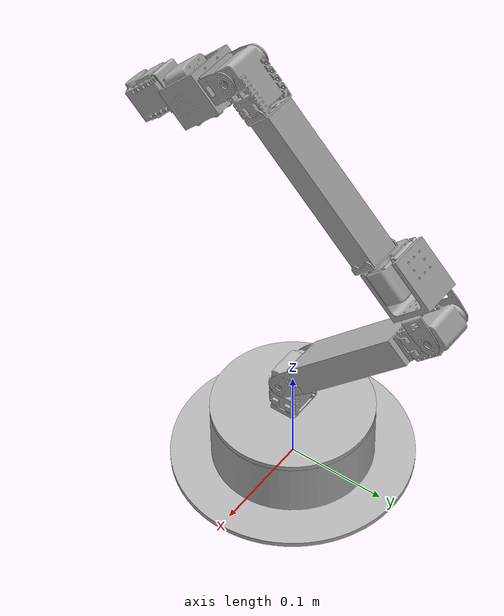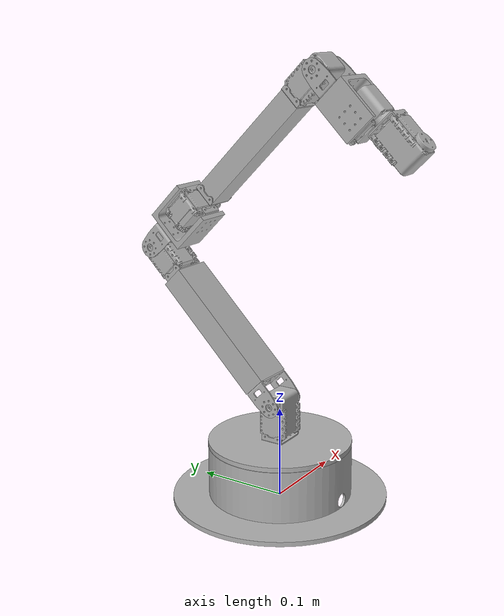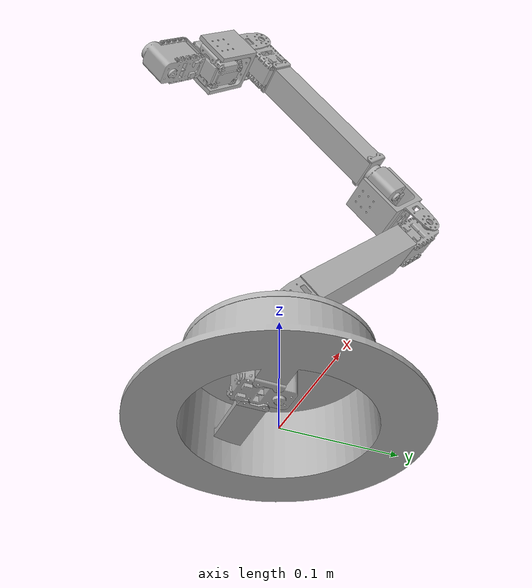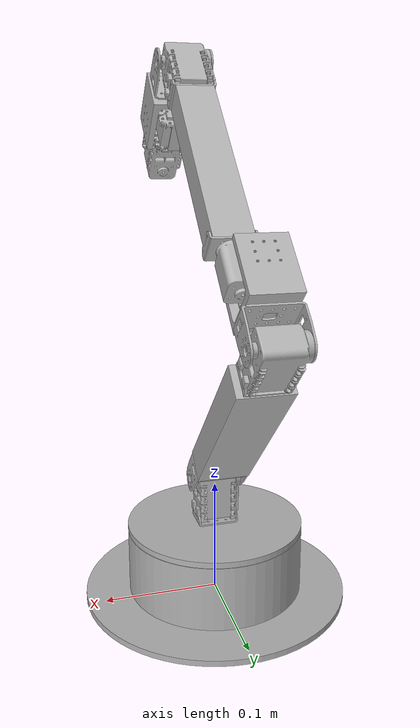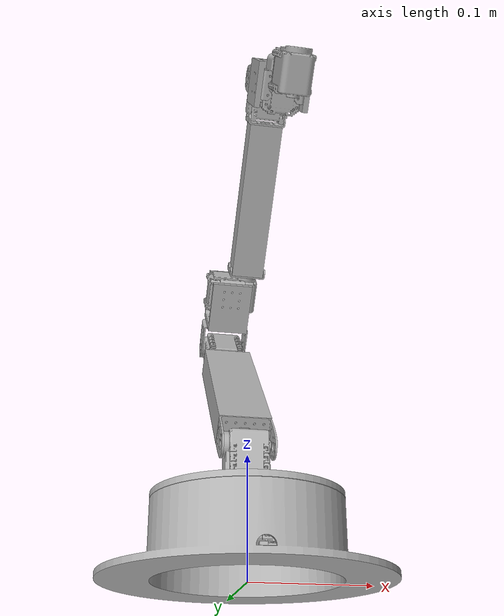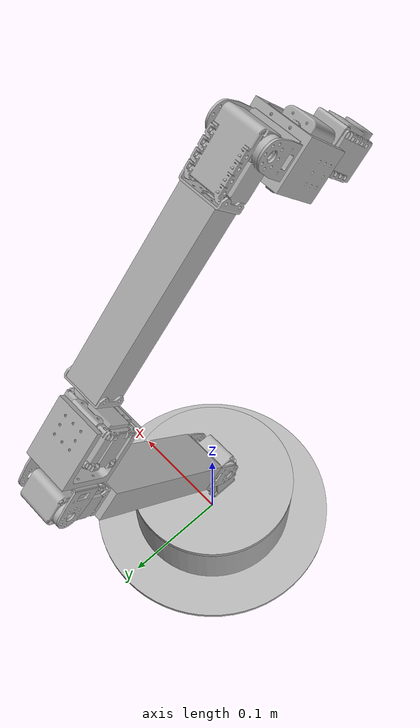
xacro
<?xml version="1.0" ?>
<robot name="mvp_arm_6dof" xmlns:xacro="http://www.ros.org/wiki/xacro">

<xacro:include filename="$(find mvp_arm_6dof_description)/urdf/materials.xacro" />
<xacro:include filename="$(find mvp_arm_6dof_description)/urdf/mvp_arm_6dof.trans" />
<xacro:include filename="$(find mvp_arm_6dof_description)/urdf/mvp_arm_6dof.gazebo" />

<link name="world"/>

<link name="base_link">
  <inertial>
		<origin xyz="0 0 0" rpy="0 0 0" />
		<mass value="3.06" />
		<inertia ixx="0.3" ixy="0.0" ixz="0.0" iyy="0.3" iyz="0.0" izz="0.3" />
  </inertial>
  <visual>
    <origin rpy="0 0 0" xyz="0 0 0"/>
    <geometry>
      <mesh filename="package://mvp_arm_6dof_description/meshes/base_link.stl" scale="0.001 0.001 0.001"/>
    </geometry>
    <material name="silver"/>
  </visual>
  <collision>
    <origin rpy="0 0 0" xyz="0 0 0"/>
    <geometry>
      <mesh filename="package://mvp_arm_6dof_description/meshes/base_link.stl" scale="0.001 0.001 0.001"/>
    </geometry>
  </collision>
</link>

<link name="f3Bracket_1">
  <inertial>
		<origin xyz="0 0 0" rpy="0 0 0" />
		<mass value="3.06" />
		<inertia ixx="0.3" ixy="0.0" ixz="0.0" iyy="0.3" iyz="0.0" izz="0.3" />
  </inertial>
  <visual>
    <origin rpy="0 0 0" xyz="0.019 0.01475 -0.041"/>
    <geometry>
      <mesh filename="package://mvp_arm_6dof_description/meshes/f3Bracket_1.stl" scale="0.001 0.001 0.001"/>
    </geometry>
    <material name="silver"/>
  </visual>
  <collision>
    <origin rpy="0 0 0" xyz="0.019 0.01475 -0.041"/>
    <geometry>
      <mesh filename="package://mvp_arm_6dof_description/meshes/f3Bracket_1.stl" scale="0.001 0.001 0.001"/>
    </geometry>
  </collision>
</link>

<link name="f3Bracket__1__1">
  <inertial>
		<origin xyz="0 0 0" rpy="0 0 0" />
		<mass value="3.06" />
		<inertia ixx="0.3" ixy="0.0" ixz="0.0" iyy="0.3" iyz="0.0" izz="0.3" />
  </inertial>
  <visual>
    <origin rpy="0 0 0" xyz="-0.019 0.01475 -0.041"/>
    <geometry>
      <mesh filename="package://mvp_arm_6dof_description/meshes/f3Bracket__1__1.stl" scale="0.001 0.001 0.001"/>
    </geometry>
    <material name="silver"/>
  </visual>
  <collision>
    <origin rpy="0 0 0" xyz="-0.019 0.01475 -0.041"/>
    <geometry>
      <mesh filename="package://mvp_arm_6dof_description/meshes/f3Bracket__1__1.stl" scale="0.001 0.001 0.001"/>
    </geometry>
  </collision>
</link>

<link name="AX12A_servo_1">
  <inertial>
		<origin xyz="0 0 0" rpy="0 0 0" />
		<mass value="3.06" />
		<inertia ixx="0.3" ixy="0.0" ixz="0.0" iyy="0.3" iyz="0.0" izz="0.3" />
  </inertial>
  <visual>
    <origin rpy="0 0 0" xyz="0.0135 0.00675 -0.057"/>
    <geometry>
      <mesh filename="package://mvp_arm_6dof_description/meshes/AX12A_servo_1.stl" scale="0.001 0.001 0.001"/>
    </geometry>
    <material name="silver"/>
  </visual>
  <collision>
    <origin rpy="0 0 0" xyz="0.0135 0.00675 -0.057"/>
    <geometry>
      <mesh filename="package://mvp_arm_6dof_description/meshes/AX12A_servo_1.stl" scale="0.001 0.001 0.001"/>
    </geometry>
  </collision>
</link>

<link name="lid_1">
  <inertial>
		<origin xyz="0 0 0" rpy="0 0 0" />
		<mass value="3.06" />
		<inertia ixx="0.3" ixy="0.0" ixz="0.0" iyy="0.3" iyz="0.0" izz="0.3" />
  </inertial>
  <visual>
    <origin rpy="0 0 0" xyz="0.0 -0.0 -0.06175"/>
    <geometry>
      <mesh filename="package://mvp_arm_6dof_description/meshes/lid_1.stl" scale="0.001 0.001 0.001"/>
    </geometry>
    <material name="silver"/>
  </visual>
  <collision>
    <origin rpy="0 0 0" xyz="0.0 -0.0 -0.06175"/>
    <geometry>
      <mesh filename="package://mvp_arm_6dof_description/meshes/lid_1.stl" scale="0.001 0.001 0.001"/>
    </geometry>
  </collision>
</link>

<link name="f3Bracket__2__1">
  <inertial>
		<origin xyz="0 0 0" rpy="0 0 0" />
		<mass value="3.06" />
		<inertia ixx="0.3" ixy="0.0" ixz="0.0" iyy="0.3" iyz="0.0" izz="0.3" />
  </inertial>
  <visual>
    <origin rpy="0 0 0" xyz="0.0 -0.0 -0.06675"/>
    <geometry>
      <mesh filename="package://mvp_arm_6dof_description/meshes/f3Bracket__2__1.stl" scale="0.001 0.001 0.001"/>
    </geometry>
    <material name="silver"/>
  </visual>
  <collision>
    <origin rpy="0 0 0" xyz="0.0 -0.0 -0.06675"/>
    <geometry>
      <mesh filename="package://mvp_arm_6dof_description/meshes/f3Bracket__2__1.stl" scale="0.001 0.001 0.001"/>
    </geometry>
  </collision>
</link>

<link name="AX12A_servo__1__1">
  <inertial>
		<origin xyz="0 0 0" rpy="0 0 0" />
		<mass value="3.06" />
		<inertia ixx="0.3" ixy="0.0" ixz="0.0" iyy="0.3" iyz="0.0" izz="0.3" />
  </inertial>
  <visual>
    <origin rpy="0 0 0" xyz="0.016 0.008 -0.07225"/>
    <geometry>
      <mesh filename="package://mvp_arm_6dof_description/meshes/AX12A_servo__1__1.stl" scale="0.001 0.001 0.001"/>
    </geometry>
    <material name="silver"/>
  </visual>
  <collision>
    <origin rpy="0 0 0" xyz="0.016 0.008 -0.07225"/>
    <geometry>
      <mesh filename="package://mvp_arm_6dof_description/meshes/AX12A_servo__1__1.stl" scale="0.001 0.001 0.001"/>
    </geometry>
  </collision>
</link>

<link name="f2Bracket_1">
  <inertial>
		<origin xyz="0 0 0" rpy="0 0 0" />
		<mass value="3.06" />
		<inertia ixx="0.3" ixy="0.0" ixz="0.0" iyy="0.3" iyz="0.0" izz="0.3" />
  </inertial>
  <visual>
    <origin rpy="0 0 0" xyz="0.02075 -0.0 -0.10825"/>
    <geometry>
      <mesh filename="package://mvp_arm_6dof_description/meshes/f2Bracket_1.stl" scale="0.001 0.001 0.001"/>
    </geometry>
    <material name="silver"/>
  </visual>
  <collision>
    <origin rpy="0 0 0" xyz="0.02075 -0.0 -0.10825"/>
    <geometry>
      <mesh filename="package://mvp_arm_6dof_description/meshes/f2Bracket_1.stl" scale="0.001 0.001 0.001"/>
    </geometry>
  </collision>
</link>

<link name="shoulderArm__1">
  <inertial>
		<origin xyz="0 0 0" rpy="0 0 0" />
		<mass value="3.06" />
		<inertia ixx="0.3" ixy="0.0" ixz="0.0" iyy="0.3" iyz="0.0" izz="0.3" />
  </inertial>
  <visual>
    <origin rpy="0 0 0" xyz="-0.00025 -0.018709 -0.126952"/>
    <geometry>
      <mesh filename="package://mvp_arm_6dof_description/meshes/shoulderArm__1.stl" scale="0.001 0.001 0.001"/>
    </geometry>
    <material name="silver"/>
  </visual>
  <collision>
    <origin rpy="0 0 0" xyz="-0.00025 -0.018709 -0.126952"/>
    <geometry>
      <mesh filename="package://mvp_arm_6dof_description/meshes/shoulderArm__1.stl" scale="0.001 0.001 0.001"/>
    </geometry>
  </collision>
</link>

<link name="f3Bracket__3__1">
  <inertial>
		<origin xyz="0 0 0" rpy="0 0 0" />
		<mass value="3.06" />
		<inertia ixx="0.3" ixy="0.0" ixz="0.0" iyy="0.3" iyz="0.0" izz="0.3" />
  </inertial>
  <visual>
    <origin rpy="0 0 0" xyz="-0.00025 -0.124775 -0.233018"/>
    <geometry>
      <mesh filename="package://mvp_arm_6dof_description/meshes/f3Bracket__3__1.stl" scale="0.001 0.001 0.001"/>
    </geometry>
    <material name="silver"/>
  </visual>
  <collision>
    <origin rpy="0 0 0" xyz="-0.00025 -0.124775 -0.233018"/>
    <geometry>
      <mesh filename="package://mvp_arm_6dof_description/meshes/f3Bracket__3__1.stl" scale="0.001 0.001 0.001"/>
    </geometry>
  </collision>
</link>

<link name="AX12A_servo__2__1">
  <inertial>
		<origin xyz="0 0 0" rpy="0 0 0" />
		<mass value="3.06" />
		<inertia ixx="0.3" ixy="0.0" ixz="0.0" iyy="0.3" iyz="0.0" izz="0.3" />
  </inertial>
  <visual>
    <origin rpy="0 0 0" xyz="0.015749 -0.134321 -0.23125"/>
    <geometry>
      <mesh filename="package://mvp_arm_6dof_description/meshes/AX12A_servo__2__1.stl" scale="0.001 0.001 0.001"/>
    </geometry>
    <material name="silver"/>
  </visual>
  <collision>
    <origin rpy="0 0 0" xyz="0.015749 -0.134321 -0.23125"/>
    <geometry>
      <mesh filename="package://mvp_arm_6dof_description/meshes/AX12A_servo__2__1.stl" scale="0.001 0.001 0.001"/>
    </geometry>
  </collision>
</link>

<link name="f2Bracket__1__1">
  <inertial>
		<origin xyz="0 0 0" rpy="0 0 0" />
		<mass value="3.06" />
		<inertia ixx="0.3" ixy="0.0" ixz="0.0" iyy="0.3" iyz="0.0" izz="0.3" />
  </inertial>
  <visual>
    <origin rpy="0 0 0" xyz="0.020499 -0.15412 -0.262363"/>
    <geometry>
      <mesh filename="package://mvp_arm_6dof_description/meshes/f2Bracket__1__1.stl" scale="0.001 0.001 0.001"/>
    </geometry>
    <material name="silver"/>
  </visual>
  <collision>
    <origin rpy="0 0 0" xyz="0.020499 -0.15412 -0.262363"/>
    <geometry>
      <mesh filename="package://mvp_arm_6dof_description/meshes/f2Bracket__1__1.stl" scale="0.001 0.001 0.001"/>
    </geometry>
  </collision>
</link>

<link name="axis3-4_connector__1">
  <inertial>
		<origin xyz="0 0 0" rpy="0 0 0" />
		<mass value="3.06" />
		<inertia ixx="0.3" ixy="0.0" ixz="0.0" iyy="0.3" iyz="0.0" izz="0.3" />
  </inertial>
  <visual>
    <origin rpy="0 0 0" xyz="-0.0005 -0.135417 -0.281072"/>
    <geometry>
      <mesh filename="package://mvp_arm_6dof_description/meshes/axis3-4_connector__1.stl" scale="0.001 0.001 0.001"/>
    </geometry>
    <material name="silver"/>
  </visual>
  <collision>
    <origin rpy="0 0 0" xyz="-0.0005 -0.135417 -0.281072"/>
    <geometry>
      <mesh filename="package://mvp_arm_6dof_description/meshes/axis3-4_connector__1.stl" scale="0.001 0.001 0.001"/>
    </geometry>
  </collision>
</link>

<link name="f3Bracket__4__1">
  <inertial>
		<origin xyz="0 0 0" rpy="0 0 0" />
		<mass value="3.06" />
		<inertia ixx="0.3" ixy="0.0" ixz="0.0" iyy="0.3" iyz="0.0" izz="0.3" />
  </inertial>
  <visual>
    <origin rpy="0 0 0" xyz="-0.0005 -0.09193 -0.297689"/>
    <geometry>
      <mesh filename="package://mvp_arm_6dof_description/meshes/f3Bracket__4__1.stl" scale="0.001 0.001 0.001"/>
    </geometry>
    <material name="silver"/>
  </visual>
  <collision>
    <origin rpy="0 0 0" xyz="-0.0005 -0.09193 -0.297689"/>
    <geometry>
      <mesh filename="package://mvp_arm_6dof_description/meshes/f3Bracket__4__1.stl" scale="0.001 0.001 0.001"/>
    </geometry>
  </collision>
</link>

<link name="f3Bracket__5__1">
  <inertial>
		<origin xyz="0 0 0" rpy="0 0 0" />
		<mass value="3.06" />
		<inertia ixx="0.3" ixy="0.0" ixz="0.0" iyy="0.3" iyz="0.0" izz="0.3" />
  </inertial>
  <visual>
    <origin rpy="0 0 0" xyz="-0.0005 -0.1188 -0.324559"/>
    <geometry>
      <mesh filename="package://mvp_arm_6dof_description/meshes/f3Bracket__5__1.stl" scale="0.001 0.001 0.001"/>
    </geometry>
    <material name="silver"/>
  </visual>
  <collision>
    <origin rpy="0 0 0" xyz="-0.0005 -0.1188 -0.324559"/>
    <geometry>
      <mesh filename="package://mvp_arm_6dof_description/meshes/f3Bracket__5__1.stl" scale="0.001 0.001 0.001"/>
    </geometry>
  </collision>
</link>

<link name="AX12A_servo__3__1">
  <inertial>
		<origin xyz="0 0 0" rpy="0 0 0" />
		<mass value="3.06" />
		<inertia ixx="0.3" ixy="0.0" ixz="0.0" iyy="0.3" iyz="0.0" izz="0.3" />
  </inertial>
  <visual>
    <origin rpy="0 0 0" xyz="-0.0085 -0.109255 -0.326326"/>
    <geometry>
      <mesh filename="package://mvp_arm_6dof_description/meshes/AX12A_servo__3__1.stl" scale="0.001 0.001 0.001"/>
    </geometry>
    <material name="silver"/>
  </visual>
  <collision>
    <origin rpy="0 0 0" xyz="-0.0085 -0.109255 -0.326326"/>
    <geometry>
      <mesh filename="package://mvp_arm_6dof_description/meshes/AX12A_servo__3__1.stl" scale="0.001 0.001 0.001"/>
    </geometry>
  </collision>
</link>

<link name="f3Bracket__6__1">
  <inertial>
		<origin xyz="0 0 0" rpy="0 0 0" />
		<mass value="3.06" />
		<inertia ixx="0.3" ixy="0.0" ixz="0.0" iyy="0.3" iyz="0.0" izz="0.3" />
  </inertial>
  <visual>
    <origin rpy="0 0 0" xyz="-0.01525 -0.09635 -0.320139"/>
    <geometry>
      <mesh filename="package://mvp_arm_6dof_description/meshes/f3Bracket__6__1.stl" scale="0.001 0.001 0.001"/>
    </geometry>
    <material name="silver"/>
  </visual>
  <collision>
    <origin rpy="0 0 0" xyz="-0.01525 -0.09635 -0.320139"/>
    <geometry>
      <mesh filename="package://mvp_arm_6dof_description/meshes/f3Bracket__6__1.stl" scale="0.001 0.001 0.001"/>
    </geometry>
  </collision>
</link>

<link name="axis4ARM__1">
  <inertial>
		<origin xyz="0 0 0" rpy="0 0 0" />
		<mass value="3.06" />
		<inertia ixx="0.3" ixy="0.0" ixz="0.0" iyy="0.3" iyz="0.0" izz="0.3" />
  </inertial>
  <visual>
    <origin rpy="0 0 0" xyz="-0.01525 -0.095227 -0.321262"/>
    <geometry>
      <mesh filename="package://mvp_arm_6dof_description/meshes/axis4ARM__1.stl" scale="0.001 0.001 0.001"/>
    </geometry>
    <material name="silver"/>
  </visual>
  <collision>
    <origin rpy="0 0 0" xyz="-0.01525 -0.095227 -0.321262"/>
    <geometry>
      <mesh filename="package://mvp_arm_6dof_description/meshes/axis4ARM__1.stl" scale="0.001 0.001 0.001"/>
    </geometry>
  </collision>
</link>

<link name="f3Bracket__7__1">
  <inertial>
		<origin xyz="0 0 0" rpy="0 0 0" />
		<mass value="3.06" />
		<inertia ixx="0.3" ixy="0.0" ixz="0.0" iyy="0.3" iyz="0.0" izz="0.3" />
  </inertial>
  <visual>
    <origin rpy="0 0 0" xyz="-0.01525 0.010839 -0.427328"/>
    <geometry>
      <mesh filename="package://mvp_arm_6dof_description/meshes/f3Bracket__7__1.stl" scale="0.001 0.001 0.001"/>
    </geometry>
    <material name="silver"/>
  </visual>
  <collision>
    <origin rpy="0 0 0" xyz="-0.01525 0.010839 -0.427328"/>
    <geometry>
      <mesh filename="package://mvp_arm_6dof_description/meshes/f3Bracket__7__1.stl" scale="0.001 0.001 0.001"/>
    </geometry>
  </collision>
</link>

<link name="AX12A_servo__4__1">
  <inertial>
		<origin xyz="0 0 0" rpy="0 0 0" />
		<mass value="3.06" />
		<inertia ixx="0.3" ixy="0.0" ixz="0.0" iyy="0.3" iyz="0.0" izz="0.3" />

  </inertial>
  <visual>
    <origin rpy="0 0 0" xyz="0.000749 0.020385 -0.42556"/>
    <geometry>
      <mesh filename="package://mvp_arm_6dof_description/meshes/AX12A_servo__4__1.stl" scale="0.001 0.001 0.001"/>
    </geometry>
    <material name="silver"/>
  </visual>
  <collision>
    <origin rpy="0 0 0" xyz="0.000749 0.020385 -0.42556"/>
    <geometry>
      <mesh filename="package://mvp_arm_6dof_description/meshes/AX12A_servo__4__1.stl" scale="0.001 0.001 0.001"/>
    </geometry>
  </collision>
</link>

<link name="f2Bracket__2__1">
  <inertial>
		<origin xyz="0 0 0" rpy="0 0 0" />
		<mass value="3.06" />
		<inertia ixx="0.3" ixy="0.0" ixz="0.0" iyy="0.3" iyz="0.0" izz="0.3" />
  </inertial>
  <visual>
    <origin rpy="0 0 0" xyz="0.005499 0.040184 -0.456673"/>
    <geometry>
      <mesh filename="package://mvp_arm_6dof_description/meshes/f2Bracket__2__1.stl" scale="0.001 0.001 0.001"/>
    </geometry>
    <material name="silver"/>
  </visual>
  <collision>
    <origin rpy="0 0 0" xyz="0.005499 0.040184 -0.456673"/>
    <geometry>
      <mesh filename="package://mvp_arm_6dof_description/meshes/f2Bracket__2__1.stl" scale="0.001 0.001 0.001"/>
    </geometry>
  </collision>
</link>

<link name="axis5-6_connector__1">
  <inertial>
		<origin xyz="0 0 0" rpy="0 0 0" />
		<mass value="3.06" />
		<inertia ixx="0.3" ixy="0.0" ixz="0.0" iyy="0.3" iyz="0.0" izz="0.3" />
  </inertial>
  <visual>
    <origin rpy="0 0 0" xyz="-0.0155 0.058893 -0.43797"/>
    <geometry>
      <mesh filename="package://mvp_arm_6dof_description/meshes/axis5-6_connector__1.stl" scale="0.001 0.001 0.001"/>
    </geometry>
    <material name="silver"/>
  </visual>
  <collision>
    <origin rpy="0 0 0" xyz="-0.0155 0.058893 -0.43797"/>
    <geometry>
      <mesh filename="package://mvp_arm_6dof_description/meshes/axis5-6_connector__1.stl" scale="0.001 0.001 0.001"/>
    </geometry>
  </collision>
</link>

<link name="f3Bracket__9__1">
  <inertial>
		<origin xyz="0 0 0" rpy="0 0 0" />
		<mass value="3.06" />
		<inertia ixx="0.3" ixy="0.0" ixz="0.0" iyy="0.3" iyz="0.0" izz="0.3" />
  </inertial>
  <visual>
    <origin rpy="0 0 0" xyz="0.0035 0.088945 -0.407918"/>
    <geometry>
      <mesh filename="package://mvp_arm_6dof_description/meshes/f3Bracket__9__1.stl" scale="0.001 0.001 0.001"/>
    </geometry>
    <material name="silver"/>
  </visual>
  <collision>
    <origin rpy="0 0 0" xyz="0.0035 0.088945 -0.407918"/>
    <geometry>
      <mesh filename="package://mvp_arm_6dof_description/meshes/f3Bracket__9__1.stl" scale="0.001 0.001 0.001"/>
    </geometry>
  </collision>
</link>

<link name="f3Bracket__8__1">
  <inertial>
		<origin xyz="0 0 0" rpy="0 0 0" />
		<mass value="3.06" />
		<inertia ixx="0.3" ixy="0.0" ixz="0.0" iyy="0.3" iyz="0.0" izz="0.3" />
  </inertial>
  <visual>
    <origin rpy="0 0 0" xyz="-0.0345 0.088945 -0.407918"/>
    <geometry>
      <mesh filename="package://mvp_arm_6dof_description/meshes/f3Bracket__8__1.stl" scale="0.001 0.001 0.001"/>
    </geometry>
    <material name="silver"/>
  </visual>
  <collision>
    <origin rpy="0 0 0" xyz="-0.0345 0.088945 -0.407918"/>
    <geometry>
      <mesh filename="package://mvp_arm_6dof_description/meshes/f3Bracket__8__1.stl" scale="0.001 0.001 0.001"/>
    </geometry>
  </collision>
</link>

<link name="AX12A_servo__5__1">
  <inertial>
		<origin xyz="0 0 0" rpy="0 0 0" />
		<mass value="3.06" />
		<inertia ixx="0.3" ixy="0.0" ixz="0.0" iyy="0.3" iyz="0.0" izz="0.3" />
  </inertial>
  <visual>
    <origin rpy="0 0 0" xyz="-0.029 0.100258 -0.407919"/>
    <geometry>
      <mesh filename="package://mvp_arm_6dof_description/meshes/AX12A_servo__5__1.stl" scale="0.001 0.001 0.001"/>
    </geometry>
    <material name="silver"/>
  </visual>
  <collision>
    <origin rpy="0 0 0" xyz="-0.029 0.100258 -0.407919"/>
    <geometry>
      <mesh filename="package://mvp_arm_6dof_description/meshes/AX12A_servo__5__1.stl" scale="0.001 0.001 0.001"/>
    </geometry>
  </collision>
</link>

<link name="f3Bracket__10__1">
  <inertial>
		<origin xyz="0 0 0" rpy="0 0 0" />
		<mass value="3.06" />
		<inertia ixx="0.3" ixy="0.0" ixz="0.0" iyy="0.3" iyz="0.0" izz="0.3" />
  </inertial>
  <visual>
    <origin rpy="0 0 0" xyz="-0.0155 0.10839 -0.409333"/>
    <geometry>
      <mesh filename="package://mvp_arm_6dof_description/meshes/f3Bracket__10__1.stl" scale="0.001 0.001 0.001"/>
    </geometry>
    <material name="silver"/>
  </visual>
  <collision>
    <origin rpy="0 0 0" xyz="-0.0155 0.10839 -0.409333"/>
    <geometry>
      <mesh filename="package://mvp_arm_6dof_description/meshes/f3Bracket__10__1.stl" scale="0.001 0.001 0.001"/>
    </geometry>
  </collision>
</link>

<link name="AX12A_servo__6__1">
  <inertial>
		<origin xyz="0 0 0" rpy="0 0 0" />
		<mass value="3.06" />
		<inertia ixx="0.3" ixy="0.0" ixz="0.0" iyy="0.3" iyz="0.0" izz="0.3" />
  </inertial>
  <visual>
    <origin rpy="0 0 0" xyz="-0.0075 0.100965 -0.394131"/>
    <geometry>
      <mesh filename="package://mvp_arm_6dof_description/meshes/AX12A_servo__6__1.stl" scale="0.001 0.001 0.001"/>
    </geometry>
    <material name="silver"/>
  </visual>
  <collision>
    <origin rpy="0 0 0" xyz="-0.0075 0.100965 -0.394131"/>
    <geometry>
      <mesh filename="package://mvp_arm_6dof_description/meshes/AX12A_servo__6__1.stl" scale="0.001 0.001 0.001"/>
    </geometry>
  </collision>
</link>

<!-- dummy joint below -->
<joint name="world" type="fixed">
  <parent link="world"/>
  <child link="base_link"/>
 </joint>
<!-- dummy joint above -->

<joint name="Rigid14" type="fixed">
  <origin rpy="0 0 0" xyz="-0.019 -0.01475 0.041"/>
  <parent link="base_link"/>
  <child link="f3Bracket_1"/>
</joint>

<joint name="Rigid15" type="fixed">
  <origin rpy="0 0 0" xyz="0.019 -0.01475 0.041"/>
  <parent link="base_link"/>
  <child link="f3Bracket__1__1"/>
</joint>

<joint name="Rigid16" type="fixed">
  <origin rpy="0 0 0" xyz="0.0055 0.008 0.016"/>
  <parent link="f3Bracket_1"/>
  <child link="AX12A_servo_1"/>
</joint>

<joint name="Rev17" type="continuous">
  <origin rpy="0 0 0" xyz="0.0135 0.00675 0.00475"/>
  <parent link="AX12A_servo_1"/>
  <child link="lid_1"/>
  <axis xyz="0.0 0.0 -1.0"/>
	<dynamics damping="1.0"/>
</joint>

<joint name="Rigid18" type="fixed">
  <origin rpy="0 0 0" xyz="0.0 0.0 0.005"/>
  <parent link="lid_1"/>
  <child link="f3Bracket__2__1"/>
</joint>

<joint name="Rigid19" type="fixed">
  <origin rpy="0 0 0" xyz="-0.016 -0.008 0.0055"/>
  <parent link="f3Bracket__2__1"/>
  <child link="AX12A_servo__1__1"/>
</joint>

<joint name="Rev20" type="continuous">
  <origin rpy="0 0 0" xyz="-0.00475 0.008 0.036"/>
  <parent link="AX12A_servo__1__1"/>
  <child link="f2Bracket_1"/>
  <axis xyz="1.0 -0.0 0.0"/>
	<dynamics damping="1.0"/>
</joint>

<joint name="Rigid23" type="fixed">
  <origin rpy="0 0 0" xyz="0.021 0.018709 0.018702"/>
  <parent link="f2Bracket_1"/>
  <child link="shoulderArm__1"/>
</joint>

<joint name="Rigid24" type="fixed">
  <origin rpy="0 0 0" xyz="0.0 0.106066 0.106066"/>
  <parent link="shoulderArm__1"/>
  <child link="f3Bracket__3__1"/>
</joint>

<joint name="Rigid25" type="fixed">
  <origin rpy="0 0 0" xyz="-0.015999 0.009546 -0.001768"/>
  <parent link="f3Bracket__3__1"/>
  <child link="AX12A_servo__2__1"/>
</joint>

<joint name="Rev26" type="continuous">
  <origin rpy="0 0 0" xyz="-0.00475 0.019799 0.031113"/>
  <parent link="AX12A_servo__2__1"/>
  <child link="f2Bracket__1__1"/>
  <axis xyz="1.0 0.0 -0.0"/>
	<dynamics damping="1.0"/>
</joint>

<joint name="Rigid32" type="fixed">
  <origin rpy="0 0 0" xyz="0.020999 -0.018703 0.018709"/>
  <parent link="f2Bracket__1__1"/>
  <child link="axis3-4_connector__1"/>
</joint>

<joint name="Rigid33" type="fixed">
  <origin rpy="0 0 0" xyz="0.0 -0.043487 0.016617"/>
  <parent link="axis3-4_connector__1"/>
  <child link="f3Bracket__4__1"/>
</joint>

<joint name="Rigid34" type="fixed">
  <origin rpy="0 0 0" xyz="0.0 -0.016617 0.043487"/>
  <parent link="axis3-4_connector__1"/>
  <child link="f3Bracket__5__1"/>
</joint>

<joint name="Rigid35" type="fixed">
  <origin rpy="0 0 0" xyz="0.008 -0.009545 0.001767"/>
  <parent link="f3Bracket__5__1"/>
  <child link="AX12A_servo__3__1"/>
</joint>

<joint name="Rev36" type="continuous">
  <origin rpy="0 0 0" xyz="0.00675 -0.012905 -0.006187"/>
  <parent link="AX12A_servo__3__1"/>
  <child link="f3Bracket__6__1"/>
  <axis xyz="-0.0 0.707107 -0.707107"/>
	<dynamics damping="1.0"/>
</joint>

<joint name="Rigid37" type="fixed">
  <origin rpy="0 0 0" xyz="0.0 -0.001123 0.001123"/>
  <parent link="f3Bracket__6__1"/>
  <child link="axis4ARM__1"/>
</joint>

<joint name="Rigid38" type="fixed">
  <origin rpy="0 0 0" xyz="0.0 -0.106066 0.106066"/>
  <parent link="axis4ARM__1"/>
  <child link="f3Bracket__7__1"/>
</joint>

<joint name="Rigid39" type="fixed">
  <origin rpy="0 0 0" xyz="-0.015999 -0.009546 -0.001768"/>
  <parent link="f3Bracket__7__1"/>
  <child link="AX12A_servo__4__1"/>
</joint>

<joint name="Rev40" type="continuous">
  <origin rpy="0 0 0" xyz="-0.00475 -0.019799 0.031113"/>
  <parent link="AX12A_servo__4__1"/>
  <child link="f2Bracket__2__1"/>
  <axis xyz="1.0 0.0 -0.0"/>
	<dynamics damping="1.0"/>
</joint>

<joint name="Rigid41" type="fixed">
  <origin rpy="0 0 0" xyz="0.020999 -0.018709 -0.018703"/>
  <parent link="f2Bracket__2__1"/>
  <child link="axis5-6_connector__1"/>
</joint>

<joint name="Rigid42" type="fixed">
  <origin rpy="0 0 0" xyz="-0.019 -0.030052 -0.030052"/>
  <parent link="axis5-6_connector__1"/>
  <child link="f3Bracket__9__1"/>
</joint>

<joint name="Rigid43" type="fixed">
  <origin rpy="0 0 0" xyz="0.019 -0.030052 -0.030052"/>
  <parent link="axis5-6_connector__1"/>
  <child link="f3Bracket__8__1"/>
</joint>

<joint name="Rigid44" type="fixed">
  <origin rpy="0 0 0" xyz="-0.0055 -0.011313 1e-06"/>
  <parent link="f3Bracket__8__1"/>
  <child link="AX12A_servo__5__1"/>
</joint>

<joint name="Rev45" type="continuous">
  <origin rpy="0 0 0" xyz="-0.0135 -0.008132 0.001414"/>
  <parent link="AX12A_servo__5__1"/>
  <child link="f3Bracket__10__1"/>
  <axis xyz="-0.0 -0.707107 -0.707107"/>
	<dynamics damping="1.0"/>
</joint>

<joint name="Rigid46" type="fixed">
  <origin rpy="0 0 0" xyz="-0.008 0.007425 -0.015202"/>
  <parent link="f3Bracket__10__1"/>
  <child link="AX12A_servo__6__1"/>
</joint>

</robot>

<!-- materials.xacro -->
<robot name="mvp_arm_6dof" xmlns:xacro="http://www.ros.org/wiki/xacro" >

<material name="silver">
  <color rgba="0.700 0.700 0.700 1.000"/>
</material>

</robot>

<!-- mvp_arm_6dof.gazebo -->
<robot name="mvp_arm_6dof" xmlns:xacro="http://www.ros.org/wiki/xacro" >

<xacro:property name="body_color" value="Gazebo/Silver" />

<gazebo>
  <plugin filename="libgazebo_ros_control.so" name="control"/>
</gazebo>
<gazebo reference="base_link">
  <material>${body_color}</material>
  <mu1>0.2</mu1>
  <mu2>0.2</mu2>
  <selfCollide>true</selfCollide>
  <gravity>true</gravity>
</gazebo>

<gazebo reference="f3Bracket_1">
  <material>${body_color}</material>
  <mu1>0.2</mu1>
  <mu2>0.2</mu2>
  <selfCollide>true</selfCollide>
</gazebo>

<gazebo reference="f3Bracket__1__1">
  <material>${body_color}</material>
  <mu1>0.2</mu1>
  <mu2>0.2</mu2>
  <selfCollide>true</selfCollide>
</gazebo>

<gazebo reference="AX12A_servo_1">
  <material>${body_color}</material>
  <mu1>0.2</mu1>
  <mu2>0.2</mu2>
  <selfCollide>true</selfCollide>
</gazebo>

<gazebo reference="lid_1">
  <material>${body_color}</material>
  <mu1>0.2</mu1>
  <mu2>0.2</mu2>
  <selfCollide>true</selfCollide>
</gazebo>

<gazebo reference="f3Bracket__2__1">
  <material>${body_color}</material>
  <mu1>0.2</mu1>
  <mu2>0.2</mu2>
  <selfCollide>true</selfCollide>
</gazebo>

<gazebo reference="AX12A_servo__1__1">
  <material>${body_color}</material>
  <mu1>0.2</mu1>
  <mu2>0.2</mu2>
  <selfCollide>true</selfCollide>
</gazebo>

<gazebo reference="f2Bracket_1">
  <material>${body_color}</material>
  <mu1>0.2</mu1>
  <mu2>0.2</mu2>
  <selfCollide>true</selfCollide>
</gazebo>

<gazebo reference="shoulderArm__1">
  <material>${body_color}</material>
  <mu1>0.2</mu1>
  <mu2>0.2</mu2>
  <selfCollide>true</selfCollide>
</gazebo>

<gazebo reference="f3Bracket__3__1">
  <material>${body_color}</material>
  <mu1>0.2</mu1>
  <mu2>0.2</mu2>
  <selfCollide>true</selfCollide>
</gazebo>

<gazebo reference="AX12A_servo__2__1">
  <material>${body_color}</material>
  <mu1>0.2</mu1>
  <mu2>0.2</mu2>
  <selfCollide>true</selfCollide>
</gazebo>

<gazebo reference="f2Bracket__1__1">
  <material>${body_color}</material>
  <mu1>0.2</mu1>
  <mu2>0.2</mu2>
  <selfCollide>true</selfCollide>
</gazebo>

<gazebo reference="axis3-4_connector__1">
  <material>${body_color}</material>
  <mu1>0.2</mu1>
  <mu2>0.2</mu2>
  <selfCollide>true</selfCollide>
</gazebo>

<gazebo reference="f3Bracket__4__1">
  <material>${body_color}</material>
  <mu1>0.2</mu1>
  <mu2>0.2</mu2>
  <selfCollide>true</selfCollide>
</gazebo>

<gazebo reference="f3Bracket__5__1">
  <material>${body_color}</material>
  <mu1>0.2</mu1>
  <mu2>0.2</mu2>
  <selfCollide>true</selfCollide>
</gazebo>

<gazebo reference="AX12A_servo__3__1">
  <material>${body_color}</material>
  <mu1>0.2</mu1>
  <mu2>0.2</mu2>
  <selfCollide>true</selfCollide>
</gazebo>

<gazebo reference="f3Bracket__6__1">
  <material>${body_color}</material>
  <mu1>0.2</mu1>
  <mu2>0.2</mu2>
  <selfCollide>true</selfCollide>
</gazebo>

<gazebo reference="axis4ARM__1">
  <material>${body_color}</material>
  <mu1>0.2</mu1>
  <mu2>0.2</mu2>
  <selfCollide>true</selfCollide>
</gazebo>

<gazebo reference="f3Bracket__7__1">
  <material>${body_color}</material>
  <mu1>0.2</mu1>
  <mu2>0.2</mu2>
  <selfCollide>true</selfCollide>
</gazebo>

<gazebo reference="AX12A_servo__4__1">
  <material>${body_color}</material>
  <mu1>0.2</mu1>
  <mu2>0.2</mu2>
  <selfCollide>true</selfCollide>
</gazebo>

<gazebo reference="f2Bracket__2__1">
  <material>${body_color}</material>
  <mu1>0.2</mu1>
  <mu2>0.2</mu2>
  <selfCollide>true</selfCollide>
</gazebo>

<gazebo reference="axis5-6_connector__1">
  <material>${body_color}</material>
  <mu1>0.2</mu1>
  <mu2>0.2</mu2>
  <selfCollide>true</selfCollide>
</gazebo>

<gazebo reference="f3Bracket__9__1">
  <material>${body_color}</material>
  <mu1>0.2</mu1>
  <mu2>0.2</mu2>
  <selfCollide>true</selfCollide>
</gazebo>

<gazebo reference="f3Bracket__8__1">
  <material>${body_color}</material>
  <mu1>0.2</mu1>
  <mu2>0.2</mu2>
  <selfCollide>true</selfCollide>
</gazebo>

<gazebo reference="AX12A_servo__5__1">
  <material>${body_color}</material>
  <mu1>0.2</mu1>
  <mu2>0.2</mu2>
  <selfCollide>true</selfCollide>
</gazebo>

<gazebo reference="f3Bracket__10__1">
  <material>${body_color}</material>
  <mu1>0.2</mu1>
  <mu2>0.2</mu2>
  <selfCollide>true</selfCollide>
</gazebo>

<gazebo reference="AX12A_servo__6__1">
  <material>${body_color}</material>
  <mu1>0.2</mu1>
  <mu2>0.2</mu2>
  <selfCollide>true</selfCollide>
</gazebo>

</robot>
